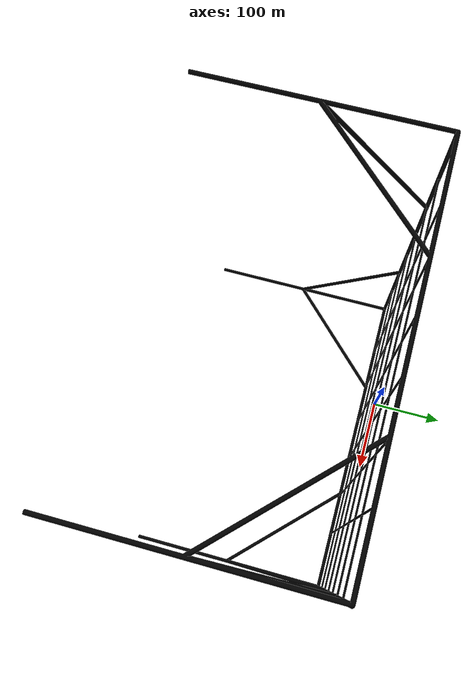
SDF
<?xml version="1.0" ?>
<sdf version="1.5">
  <model name="table">
    <static>true</static>
    <link name="table">
      <pose>0 0 0.0 0 0 0</pose>
      <collision name="collision">
        <geometry>
          <mesh>
            <uri>model://table/table.dae</uri>
            <scale>0.5 0.5 0.5</scale>
          </mesh>
        </geometry>
      </collision>
      <visual name="visual">
      <material>
<ambient>0.0 0.0 0.0 1</ambient> <!-- Black ambient light -->
<diffuse>0.0 0.0 0.0 1</diffuse> <!-- Black diffuse light -->
<specular>0.0 0.0 0.0 1</specular> <!-- No shine -->

</material>
        <geometry>
        <mesh>
            <uri>model://table/table.dae</uri>
            <scale>0.5 0.5 0.5</scale>
          </mesh>
        </geometry>

      </visual>
    </link>
  </model>
</sdf>
